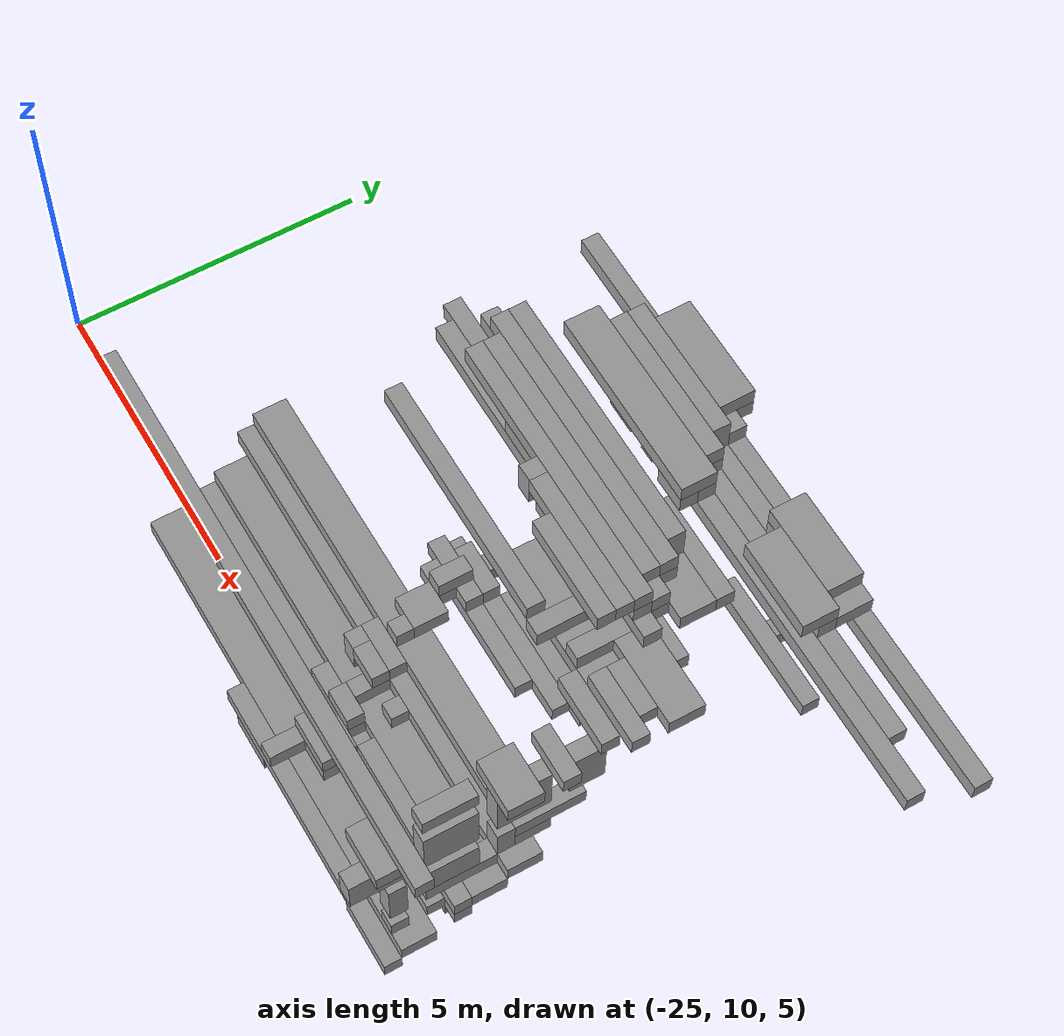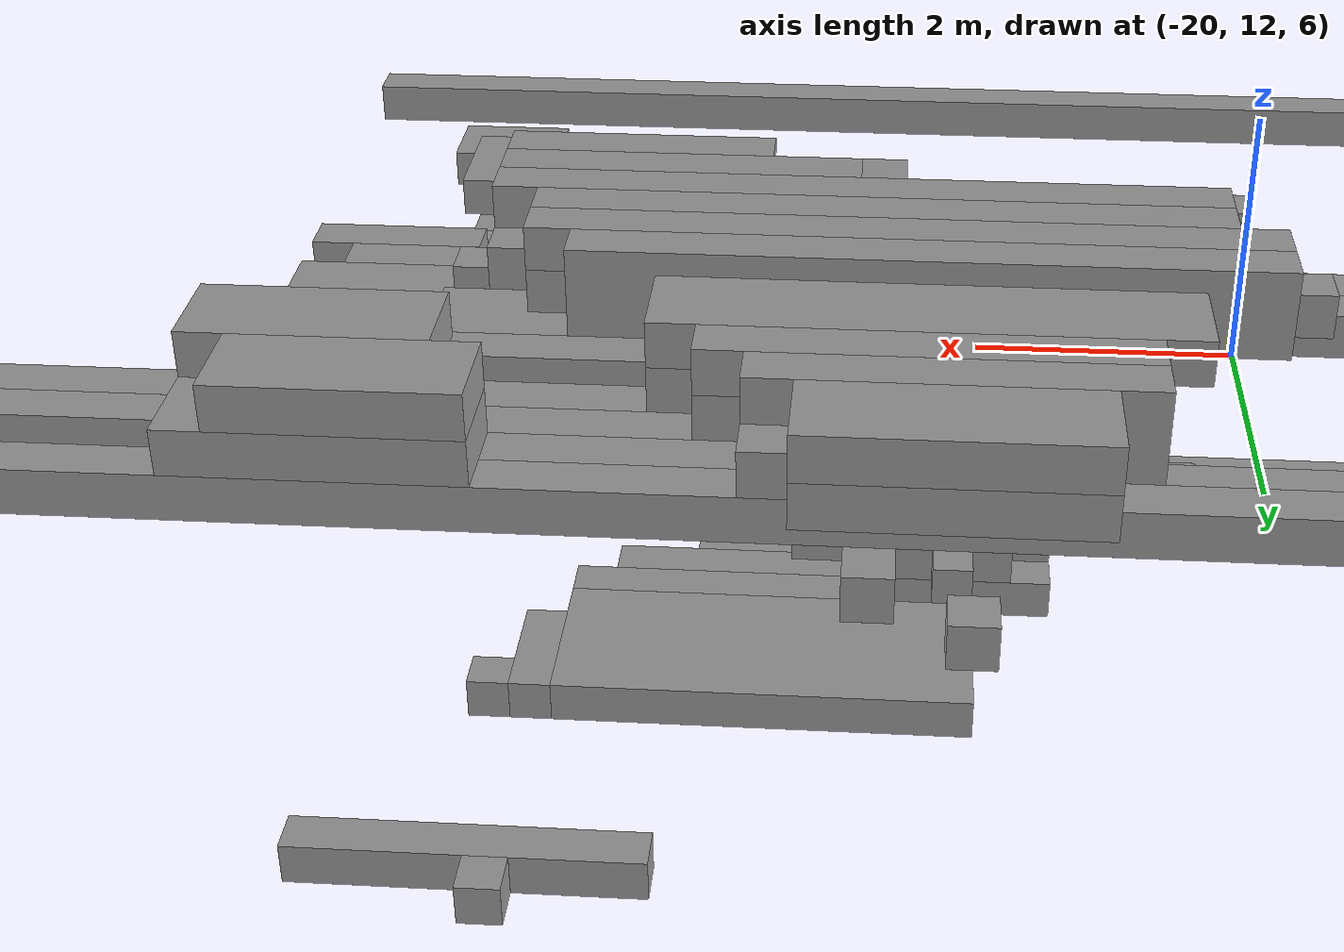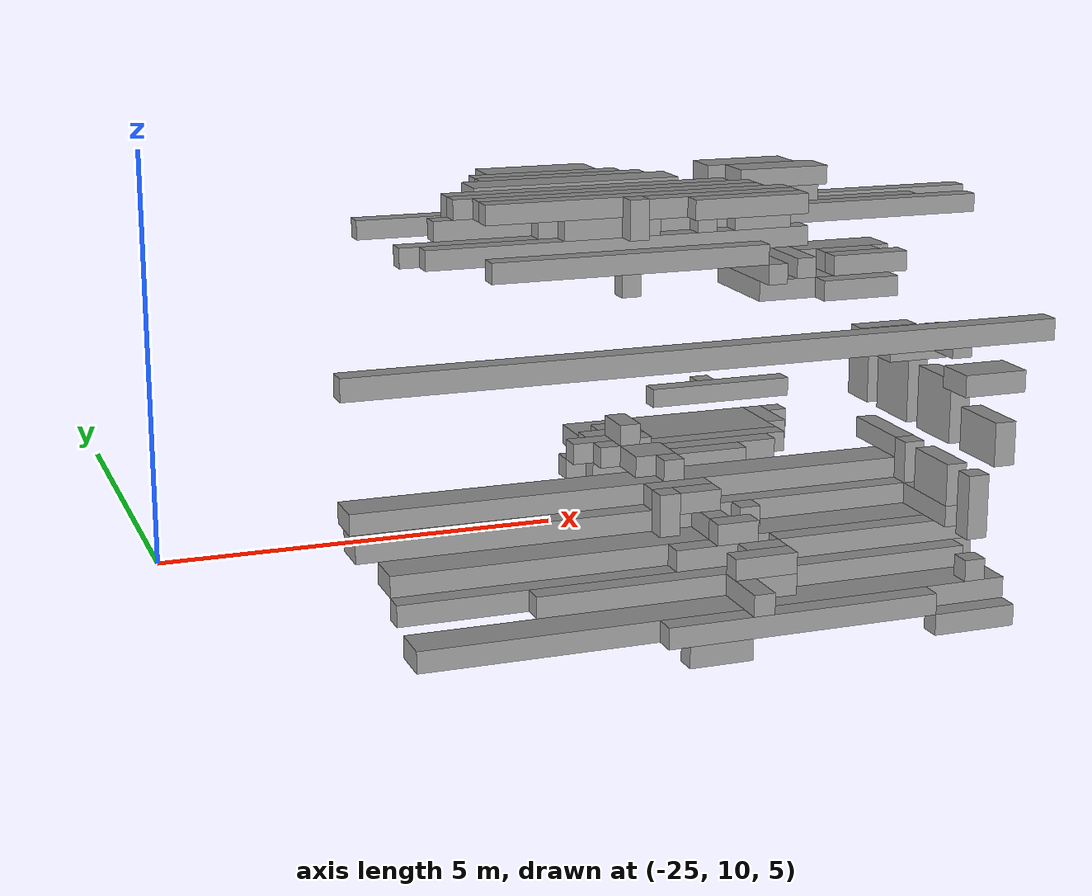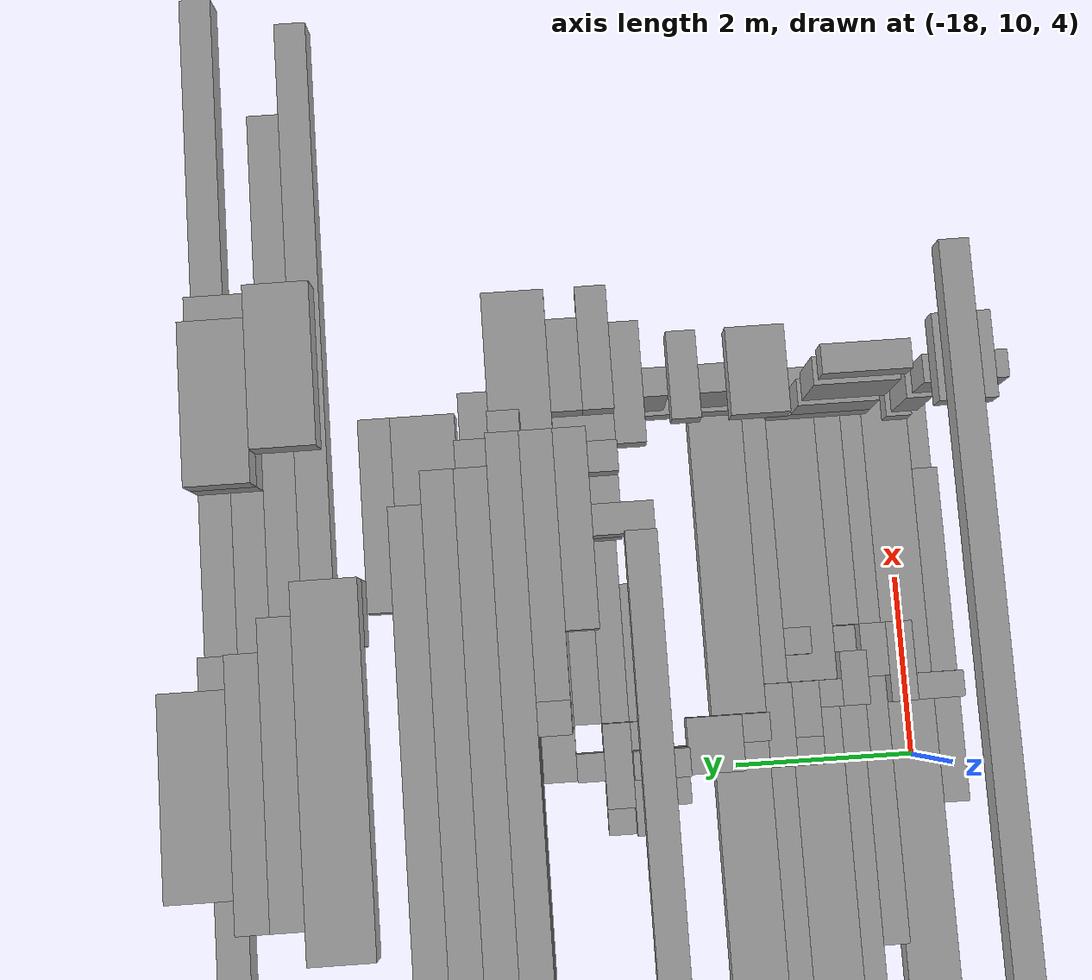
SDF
<sdf version="1.6">
 <world name="bt_world">
  <include><uri>model://sun</uri></include>
  <model name="obstacle_544">
   <static>true</static>
   <pose>-17.849999999999998 9.75 7.05 0 0 0</pose>
   <link name="link">
    <collision name="collision"><geometry><box><size>9.9 0.3 0.3</size></box></geometry></collision>
    <visual name="visual">
     <geometry><box><size>9.9 0.3 0.3</size></box></geometry>
     <material><ambient>0.5 0.5 0.5 1</ambient><diffuse>0.6 0.6 0.6 1</diffuse></material>
    </visual>
   </link>
  </model>
  <model name="obstacle_652">
   <static>true</static>
   <pose>-17.849999999999998 11.7 4.35 0 0 0</pose>
   <link name="link">
    <collision name="collision"><geometry><box><size>8.7 0.6 0.3</size></box></geometry></collision>
    <visual name="visual">
     <geometry><box><size>8.7 0.6 0.3</size></box></geometry>
     <material><ambient>0.5 0.5 0.5 1</ambient><diffuse>0.6 0.6 0.6 1</diffuse></material>
    </visual>
   </link>
  </model>
  <model name="obstacle_653">
   <static>true</static>
   <pose>-18.0 12.0 4.6499999999999995 0 0 0</pose>
   <link name="link">
    <collision name="collision"><geometry><box><size>8.4 0.6 0.3</size></box></geometry></collision>
    <visual name="visual">
     <geometry><box><size>8.4 0.6 0.3</size></box></geometry>
     <material><ambient>0.5 0.5 0.5 1</ambient><diffuse>0.6 0.6 0.6 1</diffuse></material>
    </visual>
   </link>
  </model>
  <model name="obstacle_699">
   <static>true</static>
   <pose>-17.7 9.9 3.4499999999999997 0 0 0</pose>
   <link name="link">
    <collision name="collision"><geometry><box><size>8.4 0.6 0.3</size></box></geometry></collision>
    <visual name="visual">
     <geometry><box><size>8.4 0.6 0.3</size></box></geometry>
     <material><ambient>0.5 0.5 0.5 1</ambient><diffuse>0.6 0.6 0.6 1</diffuse></material>
    </visual>
   </link>
  </model>
  <model name="obstacle_700">
   <static>true</static>
   <pose>-17.7 10.65 3.75 0 0 0</pose>
   <link name="link">
    <collision name="collision"><geometry><box><size>8.4 0.3 0.3</size></box></geometry></collision>
    <visual name="visual">
     <geometry><box><size>8.4 0.3 0.3</size></box></geometry>
     <material><ambient>0.5 0.5 0.5 1</ambient><diffuse>0.6 0.6 0.6 1</diffuse></material>
    </visual>
   </link>
  </model>
  <model name="obstacle_701">
   <static>true</static>
   <pose>-17.7 11.1 4.05 0 0 0</pose>
   <link name="link">
    <collision name="collision"><geometry><box><size>8.4 0.6 0.3</size></box></geometry></collision>
    <visual name="visual">
     <geometry><box><size>8.4 0.6 0.3</size></box></geometry>
     <material><ambient>0.5 0.5 0.5 1</ambient><diffuse>0.6 0.6 0.6 1</diffuse></material>
    </visual>
   </link>
  </model>
  <model name="obstacle_891">
   <static>true</static>
   <pose>-17.7 14.549999999999999 7.6499999999999995 0 0 0</pose>
   <link name="link">
    <collision name="collision"><geometry><box><size>6.0 0.3 0.3</size></box></geometry></collision>
    <visual name="visual">
     <geometry><box><size>6.0 0.3 0.3</size></box></geometry>
     <material><ambient>0.5 0.5 0.5 1</ambient><diffuse>0.6 0.6 0.6 1</diffuse></material>
    </visual>
   </link>
  </model>
  <model name="obstacle_894">
   <static>true</static>
   <pose>-15.45 16.95 7.6499999999999995 0 0 0</pose>
   <link name="link">
    <collision name="collision"><geometry><box><size>10.5 0.3 0.3</size></box></geometry></collision>
    <visual name="visual">
     <geometry><box><size>10.5 0.3 0.3</size></box></geometry>
     <material><ambient>0.5 0.5 0.5 1</ambient><diffuse>0.6 0.6 0.6 1</diffuse></material>
    </visual>
   </link>
  </model>
  <model name="obstacle_938">
   <static>true</static>
   <pose>-17.4 14.25 7.6499999999999995 0 0 0</pose>
   <link name="link">
    <collision name="collision"><geometry><box><size>6.0 0.3 0.3</size></box></geometry></collision>
    <visual name="visual">
     <geometry><box><size>6.0 0.3 0.3</size></box></geometry>
     <material><ambient>0.5 0.5 0.5 1</ambient><diffuse>0.6 0.6 0.6 1</diffuse></material>
    </visual>
   </link>
  </model>
  <model name="obstacle_965">
   <static>true</static>
   <pose>-16.95 10.35 3.75 0 0 0</pose>
   <link name="link">
    <collision name="collision"><geometry><box><size>6.3 0.3 0.3</size></box></geometry></collision>
    <visual name="visual">
     <geometry><box><size>6.3 0.3 0.3</size></box></geometry>
     <material><ambient>0.5 0.5 0.5 1</ambient><diffuse>0.6 0.6 0.6 1</diffuse></material>
    </visual>
   </link>
  </model>
  <model name="obstacle_966">
   <static>true</static>
   <pose>-17.849999999999998 10.95 3.75 0 0 0</pose>
   <link name="link">
    <collision name="collision"><geometry><box><size>4.5 0.3 0.3</size></box></geometry></collision>
    <visual name="visual">
     <geometry><box><size>4.5 0.3 0.3</size></box></geometry>
     <material><ambient>0.5 0.5 0.5 1</ambient><diffuse>0.6 0.6 0.6 1</diffuse></material>
    </visual>
   </link>
  </model>
  <model name="obstacle_967">
   <static>true</static>
   <pose>-17.55 14.85 7.949999999999999 0 0 0</pose>
   <link name="link">
    <collision name="collision"><geometry><box><size>5.1 0.3 0.3</size></box></geometry></collision>
    <visual name="visual">
     <geometry><box><size>5.1 0.3 0.3</size></box></geometry>
     <material><ambient>0.5 0.5 0.5 1</ambient><diffuse>0.6 0.6 0.6 1</diffuse></material>
    </visual>
   </link>
  </model>
  <model name="obstacle_985">
   <static>true</static>
   <pose>-17.7 13.049999999999999 7.6499999999999995 0 0 0</pose>
   <link name="link">
    <collision name="collision"><geometry><box><size>4.2 0.3 0.3</size></box></geometry></collision>
    <visual name="visual">
     <geometry><box><size>4.2 0.3 0.3</size></box></geometry>
     <material><ambient>0.5 0.5 0.5 1</ambient><diffuse>0.6 0.6 0.6 1</diffuse></material>
    </visual>
   </link>
  </model>
  <model name="obstacle_987">
   <static>true</static>
   <pose>-17.4 14.85 8.25 0 0 0</pose>
   <link name="link">
    <collision name="collision"><geometry><box><size>4.8 0.3 0.3</size></box></geometry></collision>
    <visual name="visual">
     <geometry><box><size>4.8 0.3 0.3</size></box></geometry>
     <material><ambient>0.5 0.5 0.5 1</ambient><diffuse>0.6 0.6 0.6 1</diffuse></material>
    </visual>
   </link>
  </model>
  <model name="obstacle_988">
   <static>true</static>
   <pose>-17.55 15.149999999999999 8.1 0 0 0</pose>
   <link name="link">
    <collision name="collision"><geometry><box><size>4.5 0.3 0.6</size></box></geometry></collision>
    <visual name="visual">
     <geometry><box><size>4.5 0.3 0.6</size></box></geometry>
     <material><ambient>0.5 0.5 0.5 1</ambient><diffuse>0.6 0.6 0.6 1</diffuse></material>
    </visual>
   </link>
  </model>
  <model name="obstacle_1003">
   <static>true</static>
   <pose>-17.099999999999998 14.25 8.25 0 0 0</pose>
   <link name="link">
    <collision name="collision"><geometry><box><size>4.8 0.3 0.3</size></box></geometry></collision>
    <visual name="visual">
     <geometry><box><size>4.8 0.3 0.3</size></box></geometry>
     <material><ambient>0.5 0.5 0.5 1</ambient><diffuse>0.6 0.6 0.6 1</diffuse></material>
    </visual>
   </link>
  </model>
  <model name="obstacle_1004">
   <static>true</static>
   <pose>-17.25 14.549999999999999 8.25 0 0 0</pose>
   <link name="link">
    <collision name="collision"><geometry><box><size>4.5 0.3 0.3</size></box></geometry></collision>
    <visual name="visual">
     <geometry><box><size>4.5 0.3 0.3</size></box></geometry>
     <material><ambient>0.5 0.5 0.5 1</ambient><diffuse>0.6 0.6 0.6 1</diffuse></material>
    </visual>
   </link>
  </model>
  <model name="obstacle_1021">
   <static>true</static>
   <pose>-17.55 15.899999999999999 8.25 0 0 0</pose>
   <link name="link">
    <collision name="collision"><geometry><box><size>3.3 0.6 0.3</size></box></geometry></collision>
    <visual name="visual">
     <geometry><box><size>3.3 0.6 0.3</size></box></geometry>
     <material><ambient>0.5 0.5 0.5 1</ambient><diffuse>0.6 0.6 0.6 1</diffuse></material>
    </visual>
   </link>
  </model>
  <model name="obstacle_1029">
   <static>true</static>
   <pose>-17.55 16.349999999999998 8.25 0 0 0</pose>
   <link name="link">
    <collision name="collision">
     <geometry><box><size>2.6999999999999997 0.3 0.3</size></box></geometry>
    </collision>
    <visual name="visual">
     <geometry><box><size>2.6999999999999997 0.3 0.3</size></box></geometry>
     <material><ambient>0.5 0.5 0.5 1</ambient><diffuse>0.6 0.6 0.6 1</diffuse></material>
    </visual>
   </link>
  </model>
  <model name="obstacle_1030">
   <static>true</static>
   <pose>-17.7 16.65 8.1 0 0 0</pose>
   <link name="link">
    <collision name="collision"><geometry><box><size>2.4 0.3 0.6</size></box></geometry></collision>
    <visual name="visual">
     <geometry><box><size>2.4 0.3 0.6</size></box></geometry>
     <material><ambient>0.5 0.5 0.5 1</ambient><diffuse>0.6 0.6 0.6 1</diffuse></material>
    </visual>
   </link>
  </model>
  <model name="obstacle_1039">
   <static>true</static>
   <pose>-16.65 9.45 3.4499999999999997 0 0 0</pose>
   <link name="link">
    <collision name="collision"><geometry><box><size>3.9 0.3 0.3</size></box></geometry></collision>
    <visual name="visual">
     <geometry><box><size>3.9 0.3 0.3</size></box></geometry>
     <material><ambient>0.5 0.5 0.5 1</ambient><diffuse>0.6 0.6 0.6 1</diffuse></material>
    </visual>
   </link>
  </model>
  <model name="obstacle_1041">
   <static>true</static>
   <pose>-18.0 13.049999999999999 4.95 0 0 0</pose>
   <link name="link">
    <collision name="collision"><geometry><box><size>1.2 0.3 0.3</size></box></geometry></collision>
    <visual name="visual">
     <geometry><box><size>1.2 0.3 0.3</size></box></geometry>
     <material><ambient>0.5 0.5 0.5 1</ambient><diffuse>0.6 0.6 0.6 1</diffuse></material>
    </visual>
   </link>
  </model>
  <model name="obstacle_1042">
   <static>true</static>
   <pose>-16.95 13.35 4.6499999999999995 0 0 0</pose>
   <link name="link">
    <collision name="collision"><geometry><box><size>3.3 0.3 0.3</size></box></geometry></collision>
    <visual name="visual">
     <geometry><box><size>3.3 0.3 0.3</size></box></geometry>
     <material><ambient>0.5 0.5 0.5 1</ambient><diffuse>0.6 0.6 0.6 1</diffuse></material>
    </visual>
   </link>
  </model>
  <model name="obstacle_1043">
   <static>true</static>
   <pose>-16.65 14.549999999999999 7.949999999999999 0 0 0</pose>
   <link name="link">
    <collision name="collision"><geometry><box><size>3.9 0.3 0.3</size></box></geometry></collision>
    <visual name="visual">
     <geometry><box><size>3.9 0.3 0.3</size></box></geometry>
     <material><ambient>0.5 0.5 0.5 1</ambient><diffuse>0.6 0.6 0.6 1</diffuse></material>
    </visual>
   </link>
  </model>
  <model name="obstacle_1046">
   <static>true</static>
   <pose>-17.55 16.95 7.949999999999999 0 0 0</pose>
   <link name="link">
    <collision name="collision"><geometry><box><size>2.1 0.3 0.3</size></box></geometry></collision>
    <visual name="visual">
     <geometry><box><size>2.1 0.3 0.3</size></box></geometry>
     <material><ambient>0.5 0.5 0.5 1</ambient><diffuse>0.6 0.6 0.6 1</diffuse></material>
    </visual>
   </link>
  </model>
  <model name="obstacle_1047">
   <static>true</static>
   <pose>-17.7 17.099999999999998 8.25 0 0 0</pose>
   <link name="link">
    <collision name="collision">
     <geometry><box><size>1.7999999999999998 0.6 0.3</size></box></geometry>
    </collision>
    <visual name="visual">
     <geometry><box><size>1.7999999999999998 0.6 0.3</size></box></geometry>
     <material><ambient>0.5 0.5 0.5 1</ambient><diffuse>0.6 0.6 0.6 1</diffuse></material>
    </visual>
   </link>
  </model>
  <model name="obstacle_1048">
   <static>true</static>
   <pose>-17.7 17.25 7.949999999999999 0 0 0</pose>
   <link name="link">
    <collision name="collision">
     <geometry><box><size>1.7999999999999998 0.3 0.3</size></box></geometry>
    </collision>
    <visual name="visual">
     <geometry><box><size>1.7999999999999998 0.3 0.3</size></box></geometry>
     <material><ambient>0.5 0.5 0.5 1</ambient><diffuse>0.6 0.6 0.6 1</diffuse></material>
    </visual>
   </link>
  </model>
  <model name="obstacle_1061">
   <static>true</static>
   <pose>-17.849999999999998 9.45 3.15 0 0 0</pose>
   <link name="link">
    <collision name="collision">
     <geometry><box><size>0.8999999999999999 0.3 0.3</size></box></geometry>
    </collision>
    <visual name="visual">
     <geometry><box><size>0.8999999999999999 0.3 0.3</size></box></geometry>
     <material><ambient>0.5 0.5 0.5 1</ambient><diffuse>0.6 0.6 0.6 1</diffuse></material>
    </visual>
   </link>
  </model>
  <model name="obstacle_1062">
   <static>true</static>
   <pose>-18.0 12.75 4.95 0 0 0</pose>
   <link name="link">
    <collision name="collision"><geometry><box><size>0.6 0.3 0.3</size></box></geometry></collision>
    <visual name="visual">
     <geometry><box><size>0.6 0.3 0.3</size></box></geometry>
     <material><ambient>0.5 0.5 0.5 1</ambient><diffuse>0.6 0.6 0.6 1</diffuse></material>
    </visual>
   </link>
  </model>
  <model name="obstacle_1063">
   <static>true</static>
   <pose>-17.099999999999998 13.049999999999999 4.6499999999999995 0 0 0</pose>
   <link name="link">
    <collision name="collision"><geometry><box><size>2.4 0.3 0.3</size></box></geometry></collision>
    <visual name="visual">
     <geometry><box><size>2.4 0.3 0.3</size></box></geometry>
     <material><ambient>0.5 0.5 0.5 1</ambient><diffuse>0.6 0.6 0.6 1</diffuse></material>
    </visual>
   </link>
  </model>
  <model name="obstacle_1064">
   <static>true</static>
   <pose>-17.849999999999998 13.35 4.95 0 0 0</pose>
   <link name="link">
    <collision name="collision">
     <geometry><box><size>0.8999999999999999 0.3 0.3</size></box></geometry>
    </collision>
    <visual name="visual">
     <geometry><box><size>0.8999999999999999 0.3 0.3</size></box></geometry>
     <material><ambient>0.5 0.5 0.5 1</ambient><diffuse>0.6 0.6 0.6 1</diffuse></material>
    </visual>
   </link>
  </model>
  <model name="obstacle_1065">
   <static>true</static>
   <pose>-17.55 14.25 7.949999999999999 0 0 0</pose>
   <link name="link">
    <collision name="collision"><geometry><box><size>1.5 0.3 0.3</size></box></geometry></collision>
    <visual name="visual">
     <geometry><box><size>1.5 0.3 0.3</size></box></geometry>
     <material><ambient>0.5 0.5 0.5 1</ambient><diffuse>0.6 0.6 0.6 1</diffuse></material>
    </visual>
   </link>
  </model>
  <model name="obstacle_1066">
   <static>true</static>
   <pose>-18.0 16.05 7.35 0 0 0</pose>
   <link name="link">
    <collision name="collision"><geometry><box><size>0.6 0.3 0.3</size></box></geometry></collision>
    <visual name="visual">
     <geometry><box><size>0.6 0.3 0.3</size></box></geometry>
     <material><ambient>0.5 0.5 0.5 1</ambient><diffuse>0.6 0.6 0.6 1</diffuse></material>
    </visual>
   </link>
  </model>
  <model name="obstacle_1077">
   <static>true</static>
   <pose>-17.849999999999998 10.65 3.4499999999999997 0 0 0</pose>
   <link name="link">
    <collision name="collision"><geometry><box><size>0.3 0.3 0.3</size></box></geometry></collision>
    <visual name="visual">
     <geometry><box><size>0.3 0.3 0.3</size></box></geometry>
     <material><ambient>0.5 0.5 0.5 1</ambient><diffuse>0.6 0.6 0.6 1</diffuse></material>
    </visual>
   </link>
  </model>
  <model name="obstacle_1078">
   <static>true</static>
   <pose>-17.4 10.65 4.05 0 0 0</pose>
   <link name="link">
    <collision name="collision"><geometry><box><size>1.2 0.3 0.3</size></box></geometry></collision>
    <visual name="visual">
     <geometry><box><size>1.2 0.3 0.3</size></box></geometry>
     <material><ambient>0.5 0.5 0.5 1</ambient><diffuse>0.6 0.6 0.6 1</diffuse></material>
    </visual>
   </link>
  </model>
  <model name="obstacle_1079">
   <static>true</static>
   <pose>-17.849999999999998 11.25 4.5 0 0 0</pose>
   <link name="link">
    <collision name="collision"><geometry><box><size>0.3 0.3 0.6</size></box></geometry></collision>
    <visual name="visual">
     <geometry><box><size>0.3 0.3 0.6</size></box></geometry>
     <material><ambient>0.5 0.5 0.5 1</ambient><diffuse>0.6 0.6 0.6 1</diffuse></material>
    </visual>
   </link>
  </model>
  <model name="obstacle_1080">
   <static>true</static>
   <pose>-17.55 11.549999999999999 4.6499999999999995 0 0 0</pose>
   <link name="link">
    <collision name="collision">
     <geometry><box><size>0.8999999999999999 0.3 0.3</size></box></geometry>
    </collision>
    <visual name="visual">
     <geometry><box><size>0.8999999999999999 0.3 0.3</size></box></geometry>
     <material><ambient>0.5 0.5 0.5 1</ambient><diffuse>0.6 0.6 0.6 1</diffuse></material>
    </visual>
   </link>
  </model>
  <model name="obstacle_1081">
   <static>true</static>
   <pose>-17.7 12.299999999999999 4.95 0 0 0</pose>
   <link name="link">
    <collision name="collision"><geometry><box><size>0.6 0.6 0.3</size></box></geometry></collision>
    <visual name="visual">
     <geometry><box><size>0.6 0.6 0.3</size></box></geometry>
     <material><ambient>0.5 0.5 0.5 1</ambient><diffuse>0.6 0.6 0.6 1</diffuse></material>
    </visual>
   </link>
  </model>
  <model name="obstacle_1082">
   <static>true</static>
   <pose>-17.849999999999998 12.9 5.25 0 0 0</pose>
   <link name="link">
    <collision name="collision"><geometry><box><size>0.3 0.6 0.3</size></box></geometry></collision>
    <visual name="visual">
     <geometry><box><size>0.3 0.6 0.3</size></box></geometry>
     <material><ambient>0.5 0.5 0.5 1</ambient><diffuse>0.6 0.6 0.6 1</diffuse></material>
    </visual>
   </link>
  </model>
  <model name="obstacle_1083">
   <static>true</static>
   <pose>-17.849999999999998 13.65 4.95 0 0 0</pose>
   <link name="link">
    <collision name="collision"><geometry><box><size>0.3 0.3 0.3</size></box></geometry></collision>
    <visual name="visual">
     <geometry><box><size>0.3 0.3 0.3</size></box></geometry>
     <material><ambient>0.5 0.5 0.5 1</ambient><diffuse>0.6 0.6 0.6 1</diffuse></material>
    </visual>
   </link>
  </model>
  <model name="obstacle_1084">
   <static>true</static>
   <pose>-16.5 14.399999999999999 4.6499999999999995 0 0 0</pose>
   <link name="link">
    <collision name="collision"><geometry><box><size>3.0 1.2 0.3</size></box></geometry></collision>
    <visual name="visual">
     <geometry><box><size>3.0 1.2 0.3</size></box></geometry>
     <material><ambient>0.5 0.5 0.5 1</ambient><diffuse>0.6 0.6 0.6 1</diffuse></material>
    </visual>
   </link>
  </model>
  <model name="obstacle_1085">
   <static>true</static>
   <pose>-14.25 16.05 7.6499999999999995 0 0 0</pose>
   <link name="link">
    <collision name="collision"><geometry><box><size>7.5 0.3 0.3</size></box></geometry></collision>
    <visual name="visual">
     <geometry><box><size>7.5 0.3 0.3</size></box></geometry>
     <material><ambient>0.5 0.5 0.5 1</ambient><diffuse>0.6 0.6 0.6 1</diffuse></material>
    </visual>
   </link>
  </model>
  <model name="obstacle_1086">
   <static>true</static>
   <pose>-17.849999999999998 17.25 7.05 0 0 0</pose>
   <link name="link">
    <collision name="collision"><geometry><box><size>0.3 0.3 0.3</size></box></geometry></collision>
    <visual name="visual">
     <geometry><box><size>0.3 0.3 0.3</size></box></geometry>
     <material><ambient>0.5 0.5 0.5 1</ambient><diffuse>0.6 0.6 0.6 1</diffuse></material>
    </visual>
   </link>
  </model>
  <model name="obstacle_1100">
   <static>true</static>
   <pose>-17.4 11.25 4.6499999999999995 0 0 0</pose>
   <link name="link">
    <collision name="collision"><geometry><box><size>0.6 0.3 0.3</size></box></geometry></collision>
    <visual name="visual">
     <geometry><box><size>0.6 0.3 0.3</size></box></geometry>
     <material><ambient>0.5 0.5 0.5 1</ambient><diffuse>0.6 0.6 0.6 1</diffuse></material>
    </visual>
   </link>
  </model>
  <model name="obstacle_1101">
   <static>true</static>
   <pose>-17.55 11.85 4.95 0 0 0</pose>
   <link name="link">
    <collision name="collision"><geometry><box><size>0.3 0.3 0.3</size></box></geometry></collision>
    <visual name="visual">
     <geometry><box><size>0.3 0.3 0.3</size></box></geometry>
     <material><ambient>0.5 0.5 0.5 1</ambient><diffuse>0.6 0.6 0.6 1</diffuse></material>
    </visual>
   </link>
  </model>
  <model name="obstacle_1123">
   <static>true</static>
   <pose>-17.25 9.75 3.75 0 0 0</pose>
   <link name="link">
    <collision name="collision">
     <geometry><box><size>0.3 0.8999999999999999 0.3</size></box></geometry>
    </collision>
    <visual name="visual">
     <geometry><box><size>0.3 0.8999999999999999 0.3</size></box></geometry>
     <material><ambient>0.5 0.5 0.5 1</ambient><diffuse>0.6 0.6 0.6 1</diffuse></material>
    </visual>
   </link>
  </model>
  <model name="obstacle_1124">
   <static>true</static>
   <pose>-16.95 10.049999999999999 4.05 0 0 0</pose>
   <link name="link">
    <collision name="collision">
     <geometry><box><size>0.8999999999999999 0.3 0.3</size></box></geometry>
    </collision>
    <visual name="visual">
     <geometry><box><size>0.8999999999999999 0.3 0.3</size></box></geometry>
     <material><ambient>0.5 0.5 0.5 1</ambient><diffuse>0.6 0.6 0.6 1</diffuse></material>
    </visual>
   </link>
  </model>
  <model name="obstacle_1125">
   <static>true</static>
   <pose>-17.099999999999998 10.65 4.35 0 0 0</pose>
   <link name="link">
    <collision name="collision"><geometry><box><size>0.6 0.3 0.3</size></box></geometry></collision>
    <visual name="visual">
     <geometry><box><size>0.6 0.3 0.3</size></box></geometry>
     <material><ambient>0.5 0.5 0.5 1</ambient><diffuse>0.6 0.6 0.6 1</diffuse></material>
    </visual>
   </link>
  </model>
  <model name="obstacle_1126">
   <static>true</static>
   <pose>-17.25 11.1 4.35 0 0 0</pose>
   <link name="link">
    <collision name="collision"><geometry><box><size>0.3 0.6 0.3</size></box></geometry></collision>
    <visual name="visual">
     <geometry><box><size>0.3 0.6 0.3</size></box></geometry>
     <material><ambient>0.5 0.5 0.5 1</ambient><diffuse>0.6 0.6 0.6 1</diffuse></material>
    </visual>
   </link>
  </model>
  <model name="obstacle_1127">
   <static>true</static>
   <pose>-15.6 11.549999999999999 4.05 0 0 0</pose>
   <link name="link">
    <collision name="collision">
     <geometry><box><size>3.5999999999999996 0.3 0.3</size></box></geometry>
    </collision>
    <visual name="visual">
     <geometry><box><size>3.5999999999999996 0.3 0.3</size></box></geometry>
     <material><ambient>0.5 0.5 0.5 1</ambient><diffuse>0.6 0.6 0.6 1</diffuse></material>
    </visual>
   </link>
  </model>
  <model name="obstacle_1128">
   <static>true</static>
   <pose>-16.2 13.65 4.6499999999999995 0 0 0</pose>
   <link name="link">
    <collision name="collision"><geometry><box><size>2.4 0.3 0.3</size></box></geometry></collision>
    <visual name="visual">
     <geometry><box><size>2.4 0.3 0.3</size></box></geometry>
     <material><ambient>0.5 0.5 0.5 1</ambient><diffuse>0.6 0.6 0.6 1</diffuse></material>
    </visual>
   </link>
  </model>
  <model name="obstacle_1129">
   <static>true</static>
   <pose>-17.25 13.95 8.1 0 0 0</pose>
   <link name="link">
    <collision name="collision"><geometry><box><size>0.3 0.3 0.6</size></box></geometry></collision>
    <visual name="visual">
     <geometry><box><size>0.3 0.3 0.6</size></box></geometry>
     <material><ambient>0.5 0.5 0.5 1</ambient><diffuse>0.6 0.6 0.6 1</diffuse></material>
    </visual>
   </link>
  </model>
  <model name="obstacle_1130">
   <static>true</static>
   <pose>-17.25 14.25 7.199999999999999 0 0 0</pose>
   <link name="link">
    <collision name="collision"><geometry><box><size>0.3 0.3 0.6</size></box></geometry></collision>
    <visual name="visual">
     <geometry><box><size>0.3 0.3 0.6</size></box></geometry>
     <material><ambient>0.5 0.5 0.5 1</ambient><diffuse>0.6 0.6 0.6 1</diffuse></material>
    </visual>
   </link>
  </model>
  <model name="obstacle_1131">
   <static>true</static>
   <pose>-17.25 16.05 7.35 0 0 0</pose>
   <link name="link">
    <collision name="collision"><geometry><box><size>0.3 0.3 0.3</size></box></geometry></collision>
    <visual name="visual">
     <geometry><box><size>0.3 0.3 0.3</size></box></geometry>
     <material><ambient>0.5 0.5 0.5 1</ambient><diffuse>0.6 0.6 0.6 1</diffuse></material>
    </visual>
   </link>
  </model>
  <model name="obstacle_1132">
   <static>true</static>
   <pose>-14.399999999999999 16.349999999999998 7.6499999999999995 0 0 0</pose>
   <link name="link">
    <collision name="collision"><geometry><box><size>6.0 0.3 0.3</size></box></geometry></collision>
    <visual name="visual">
     <geometry><box><size>6.0 0.3 0.3</size></box></geometry>
     <material><ambient>0.5 0.5 0.5 1</ambient><diffuse>0.6 0.6 0.6 1</diffuse></material>
    </visual>
   </link>
  </model>
  <model name="obstacle_1133">
   <static>true</static>
   <pose>-15.75 16.65 7.6499999999999995 0 0 0</pose>
   <link name="link">
    <collision name="collision"><geometry><box><size>3.3 0.3 0.3</size></box></geometry></collision>
    <visual name="visual">
     <geometry><box><size>3.3 0.3 0.3</size></box></geometry>
     <material><ambient>0.5 0.5 0.5 1</ambient><diffuse>0.6 0.6 0.6 1</diffuse></material>
    </visual>
   </link>
  </model>
  <model name="obstacle_1134">
   <static>true</static>
   <pose>-17.25 17.25 7.35 0 0 0</pose>
   <link name="link">
    <collision name="collision"><geometry><box><size>0.3 0.3 0.3</size></box></geometry></collision>
    <visual name="visual">
     <geometry><box><size>0.3 0.3 0.3</size></box></geometry>
     <material><ambient>0.5 0.5 0.5 1</ambient><diffuse>0.6 0.6 0.6 1</diffuse></material>
    </visual>
   </link>
  </model>
  <model name="obstacle_1173">
   <static>true</static>
   <pose>-16.8 10.049999999999999 3.75 0 0 0</pose>
   <link name="link">
    <collision name="collision"><geometry><box><size>0.6 0.3 0.3</size></box></geometry></collision>
    <visual name="visual">
     <geometry><box><size>0.6 0.3 0.3</size></box></geometry>
     <material><ambient>0.5 0.5 0.5 1</ambient><diffuse>0.6 0.6 0.6 1</diffuse></material>
    </visual>
   </link>
  </model>
  <model name="obstacle_1174">
   <static>true</static>
   <pose>-16.8 10.35 4.05 0 0 0</pose>
   <link name="link">
    <collision name="collision"><geometry><box><size>0.6 0.3 0.3</size></box></geometry></collision>
    <visual name="visual">
     <geometry><box><size>0.6 0.3 0.3</size></box></geometry>
     <material><ambient>0.5 0.5 0.5 1</ambient><diffuse>0.6 0.6 0.6 1</diffuse></material>
    </visual>
   </link>
  </model>
  <model name="obstacle_1175">
   <static>true</static>
   <pose>-15.899999999999999 13.95 8.25 0 0 0</pose>
   <link name="link">
    <collision name="collision"><geometry><box><size>2.4 0.3 0.3</size></box></geometry></collision>
    <visual name="visual">
     <geometry><box><size>2.4 0.3 0.3</size></box></geometry>
     <material><ambient>0.5 0.5 0.5 1</ambient><diffuse>0.6 0.6 0.6 1</diffuse></material>
    </visual>
   </link>
  </model>
  <model name="obstacle_1176">
   <static>true</static>
   <pose>-16.95 16.5 7.35 0 0 0</pose>
   <link name="link">
    <collision name="collision"><geometry><box><size>0.3 0.6 0.3</size></box></geometry></collision>
    <visual name="visual">
     <geometry><box><size>0.3 0.6 0.3</size></box></geometry>
     <material><ambient>0.5 0.5 0.5 1</ambient><diffuse>0.6 0.6 0.6 1</diffuse></material>
    </visual>
   </link>
  </model>
  <model name="obstacle_1177">
   <static>true</static>
   <pose>-16.65 16.349999999999998 7.949999999999999 0 0 0</pose>
   <link name="link">
    <collision name="collision">
     <geometry><box><size>0.8999999999999999 0.3 0.3</size></box></geometry>
    </collision>
    <visual name="visual">
     <geometry><box><size>0.8999999999999999 0.3 0.3</size></box></geometry>
     <material><ambient>0.5 0.5 0.5 1</ambient><diffuse>0.6 0.6 0.6 1</diffuse></material>
    </visual>
   </link>
  </model>
  <model name="obstacle_1199">
   <static>true</static>
   <pose>-16.65 11.25 4.35 0 0 0</pose>
   <link name="link">
    <collision name="collision"><geometry><box><size>0.3 0.3 0.3</size></box></geometry></collision>
    <visual name="visual">
     <geometry><box><size>0.3 0.3 0.3</size></box></geometry>
     <material><ambient>0.5 0.5 0.5 1</ambient><diffuse>0.6 0.6 0.6 1</diffuse></material>
    </visual>
   </link>
  </model>
  <model name="obstacle_1200">
   <static>true</static>
   <pose>-16.349999999999998 16.05 7.949999999999999 0 0 0</pose>
   <link name="link">
    <collision name="collision">
     <geometry><box><size>0.8999999999999999 0.3 0.3</size></box></geometry>
    </collision>
    <visual name="visual">
     <geometry><box><size>0.8999999999999999 0.3 0.3</size></box></geometry>
     <material><ambient>0.5 0.5 0.5 1</ambient><diffuse>0.6 0.6 0.6 1</diffuse></material>
    </visual>
   </link>
  </model>
  <model name="obstacle_1214">
   <static>true</static>
   <pose>-15.0 10.65 4.05 0 0 0</pose>
   <link name="link">
    <collision name="collision"><geometry><box><size>3.0 0.3 0.3</size></box></geometry></collision>
    <visual name="visual">
     <geometry><box><size>3.0 0.3 0.3</size></box></geometry>
     <material><ambient>0.5 0.5 0.5 1</ambient><diffuse>0.6 0.6 0.6 1</diffuse></material>
    </visual>
   </link>
  </model>
  <model name="obstacle_1215">
   <static>true</static>
   <pose>-15.6 13.65 8.25 0 0 0</pose>
   <link name="link">
    <collision name="collision">
     <geometry><box><size>1.7999999999999998 0.3 0.3</size></box></geometry>
    </collision>
    <visual name="visual">
     <geometry><box><size>1.7999999999999998 0.3 0.3</size></box></geometry>
     <material><ambient>0.5 0.5 0.5 1</ambient><diffuse>0.6 0.6 0.6 1</diffuse></material>
    </visual>
   </link>
  </model>
  <model name="obstacle_1216">
   <static>true</static>
   <pose>-16.2 15.75 7.949999999999999 0 0 0</pose>
   <link name="link">
    <collision name="collision"><geometry><box><size>0.6 0.3 0.3</size></box></geometry></collision>
    <visual name="visual">
     <geometry><box><size>0.6 0.3 0.3</size></box></geometry>
     <material><ambient>0.5 0.5 0.5 1</ambient><diffuse>0.6 0.6 0.6 1</diffuse></material>
    </visual>
   </link>
  </model>
  <model name="obstacle_1226">
   <static>true</static>
   <pose>-16.05 14.25 7.949999999999999 0 0 0</pose>
   <link name="link">
    <collision name="collision"><geometry><box><size>0.3 0.3 0.3</size></box></geometry></collision>
    <visual name="visual">
     <geometry><box><size>0.3 0.3 0.3</size></box></geometry>
     <material><ambient>0.5 0.5 0.5 1</ambient><diffuse>0.6 0.6 0.6 1</diffuse></material>
    </visual>
   </link>
  </model>
  <model name="obstacle_1227">
   <static>true</static>
   <pose>-15.299999999999999 15.45 7.6499999999999995 0 0 0</pose>
   <link name="link">
    <collision name="collision">
     <geometry><box><size>1.7999999999999998 0.3 0.3</size></box></geometry>
    </collision>
    <visual name="visual">
     <geometry><box><size>1.7999999999999998 0.3 0.3</size></box></geometry>
     <material><ambient>0.5 0.5 0.5 1</ambient><diffuse>0.6 0.6 0.6 1</diffuse></material>
    </visual>
   </link>
  </model>
  <model name="obstacle_1244">
   <static>true</static>
   <pose>-15.149999999999999 15.0 7.6499999999999995 0 0 0</pose>
   <link name="link">
    <collision name="collision"><geometry><box><size>1.5 0.6 0.3</size></box></geometry></collision>
    <visual name="visual">
     <geometry><box><size>1.5 0.6 0.3</size></box></geometry>
     <material><ambient>0.5 0.5 0.5 1</ambient><diffuse>0.6 0.6 0.6 1</diffuse></material>
    </visual>
   </link>
  </model>
  <model name="obstacle_1245">
   <static>true</static>
   <pose>-14.7 16.65 4.6499999999999995 0 0 0</pose>
   <link name="link">
    <collision name="collision"><geometry><box><size>2.4 0.3 0.3</size></box></geometry></collision>
    <visual name="visual">
     <geometry><box><size>2.4 0.3 0.3</size></box></geometry>
     <material><ambient>0.5 0.5 0.5 1</ambient><diffuse>0.6 0.6 0.6 1</diffuse></material>
    </visual>
   </link>
  </model>
  <model name="obstacle_1254">
   <static>true</static>
   <pose>-15.45 13.799999999999999 7.35 0 0 0</pose>
   <link name="link">
    <collision name="collision">
     <geometry><box><size>0.3 1.7999999999999998 0.3</size></box></geometry>
    </collision>
    <visual name="visual">
     <geometry><box><size>0.3 1.7999999999999998 0.3</size></box></geometry>
     <material><ambient>0.5 0.5 0.5 1</ambient><diffuse>0.6 0.6 0.6 1</diffuse></material>
    </visual>
   </link>
  </model>
  <model name="obstacle_1255">
   <static>true</static>
   <pose>-14.85 13.95 7.05 0 0 0</pose>
   <link name="link">
    <collision name="collision"><geometry><box><size>1.5 1.5 0.3</size></box></geometry></collision>
    <visual name="visual">
     <geometry><box><size>1.5 1.5 0.3</size></box></geometry>
     <material><ambient>0.5 0.5 0.5 1</ambient><diffuse>0.6 0.6 0.6 1</diffuse></material>
    </visual>
   </link>
  </model>
  <model name="obstacle_1256">
   <static>true</static>
   <pose>-15.149999999999999 14.25 7.949999999999999 0 0 0</pose>
   <link name="link">
    <collision name="collision">
     <geometry><box><size>0.8999999999999999 0.3 0.3</size></box></geometry>
    </collision>
    <visual name="visual">
     <geometry><box><size>0.8999999999999999 0.3 0.3</size></box></geometry>
     <material><ambient>0.5 0.5 0.5 1</ambient><diffuse>0.6 0.6 0.6 1</diffuse></material>
    </visual>
   </link>
  </model>
  <model name="obstacle_1269">
   <static>true</static>
   <pose>-14.549999999999999 10.95 3.75 0 0 0</pose>
   <link name="link">
    <collision name="collision"><geometry><box><size>1.5 0.3 0.3</size></box></geometry></collision>
    <visual name="visual">
     <geometry><box><size>1.5 0.3 0.3</size></box></geometry>
     <material><ambient>0.5 0.5 0.5 1</ambient><diffuse>0.6 0.6 0.6 1</diffuse></material>
    </visual>
   </link>
  </model>
  <model name="obstacle_1276">
   <static>true</static>
   <pose>-14.85 13.799999999999999 7.35 0 0 0</pose>
   <link name="link">
    <collision name="collision"><geometry><box><size>0.3 1.2 0.3</size></box></geometry></collision>
    <visual name="visual">
     <geometry><box><size>0.3 1.2 0.3</size></box></geometry>
     <material><ambient>0.5 0.5 0.5 1</ambient><diffuse>0.6 0.6 0.6 1</diffuse></material>
    </visual>
   </link>
  </model>
  <model name="obstacle_1277">
   <static>true</static>
   <pose>-14.85 14.549999999999999 4.6499999999999995 0 0 0</pose>
   <link name="link">
    <collision name="collision">
     <geometry><box><size>0.3 0.8999999999999999 0.3</size></box></geometry>
    </collision>
    <visual name="visual">
     <geometry><box><size>0.3 0.8999999999999999 0.3</size></box></geometry>
     <material><ambient>0.5 0.5 0.5 1</ambient><diffuse>0.6 0.6 0.6 1</diffuse></material>
    </visual>
   </link>
  </model>
  <model name="obstacle_1278">
   <static>true</static>
   <pose>-14.1 16.8 7.949999999999999 0 0 0</pose>
   <link name="link">
    <collision name="collision">
     <geometry><box><size>1.7999999999999998 0.6 0.3</size></box></geometry>
    </collision>
    <visual name="visual">
     <geometry><box><size>1.7999999999999998 0.6 0.3</size></box></geometry>
     <material><ambient>0.5 0.5 0.5 1</ambient><diffuse>0.6 0.6 0.6 1</diffuse></material>
    </visual>
   </link>
  </model>
  <model name="obstacle_1279">
   <static>true</static>
   <pose>-14.25 16.8 8.25 0 0 0</pose>
   <link name="link">
    <collision name="collision"><geometry><box><size>1.5 0.6 0.3</size></box></geometry></collision>
    <visual name="visual">
     <geometry><box><size>1.5 0.6 0.3</size></box></geometry>
     <material><ambient>0.5 0.5 0.5 1</ambient><diffuse>0.6 0.6 0.6 1</diffuse></material>
    </visual>
   </link>
  </model>
  <model name="obstacle_1280">
   <static>true</static>
   <pose>-14.85 16.95 4.6499999999999995 0 0 0</pose>
   <link name="link">
    <collision name="collision"><geometry><box><size>0.3 0.3 0.3</size></box></geometry></collision>
    <visual name="visual">
     <geometry><box><size>0.3 0.3 0.3</size></box></geometry>
     <material><ambient>0.5 0.5 0.5 1</ambient><diffuse>0.6 0.6 0.6 1</diffuse></material>
    </visual>
   </link>
  </model>
  <model name="obstacle_1289">
   <static>true</static>
   <pose>-14.1 9.45 3.15 0 0 0</pose>
   <link name="link">
    <collision name="collision"><geometry><box><size>1.2 0.3 0.3</size></box></geometry></collision>
    <visual name="visual">
     <geometry><box><size>1.2 0.3 0.3</size></box></geometry>
     <material><ambient>0.5 0.5 0.5 1</ambient><diffuse>0.6 0.6 0.6 1</diffuse></material>
    </visual>
   </link>
  </model>
  <model name="obstacle_1290">
   <static>true</static>
   <pose>-14.1 13.049999999999999 7.05 0 0 0</pose>
   <link name="link">
    <collision name="collision"><geometry><box><size>1.2 0.3 0.3</size></box></geometry></collision>
    <visual name="visual">
     <geometry><box><size>1.2 0.3 0.3</size></box></geometry>
     <material><ambient>0.5 0.5 0.5 1</ambient><diffuse>0.6 0.6 0.6 1</diffuse></material>
    </visual>
   </link>
  </model>
  <model name="obstacle_1291">
   <static>true</static>
   <pose>-13.95 14.1 7.35 0 0 0</pose>
   <link name="link">
    <collision name="collision"><geometry><box><size>1.5 0.6 0.3</size></box></geometry></collision>
    <visual name="visual">
     <geometry><box><size>1.5 0.6 0.3</size></box></geometry>
     <material><ambient>0.5 0.5 0.5 1</ambient><diffuse>0.6 0.6 0.6 1</diffuse></material>
    </visual>
   </link>
  </model>
  <model name="obstacle_1292">
   <static>true</static>
   <pose>-14.549999999999999 14.85 4.6499999999999995 0 0 0</pose>
   <link name="link">
    <collision name="collision"><geometry><box><size>0.3 0.3 0.3</size></box></geometry></collision>
    <visual name="visual">
     <geometry><box><size>0.3 0.3 0.3</size></box></geometry>
     <material><ambient>0.5 0.5 0.5 1</ambient><diffuse>0.6 0.6 0.6 1</diffuse></material>
    </visual>
   </link>
  </model>
  <model name="obstacle_1293">
   <static>true</static>
   <pose>-13.95 16.2 8.25 0 0 0</pose>
   <link name="link">
    <collision name="collision"><geometry><box><size>1.5 0.6 0.3</size></box></geometry></collision>
    <visual name="visual">
     <geometry><box><size>1.5 0.6 0.3</size></box></geometry>
     <material><ambient>0.5 0.5 0.5 1</ambient><diffuse>0.6 0.6 0.6 1</diffuse></material>
    </visual>
   </link>
  </model>
  <model name="obstacle_1300">
   <static>true</static>
   <pose>-13.95 9.6 6.45 0 0 0</pose>
   <link name="link">
    <collision name="collision">
     <geometry><box><size>0.8999999999999999 0.6 0.3</size></box></geometry>
    </collision>
    <visual name="visual">
     <geometry><box><size>0.8999999999999999 0.6 0.3</size></box></geometry>
     <material><ambient>0.5 0.5 0.5 1</ambient><diffuse>0.6 0.6 0.6 1</diffuse></material>
    </visual>
   </link>
  </model>
  <model name="obstacle_1301">
   <static>true</static>
   <pose>-13.95 11.7 6.45 0 0 0</pose>
   <link name="link">
    <collision name="collision">
     <geometry><box><size>0.8999999999999999 0.6 0.3</size></box></geometry>
    </collision>
    <visual name="visual">
     <geometry><box><size>0.8999999999999999 0.6 0.3</size></box></geometry>
     <material><ambient>0.5 0.5 0.5 1</ambient><diffuse>0.6 0.6 0.6 1</diffuse></material>
    </visual>
   </link>
  </model>
  <model name="obstacle_1302">
   <static>true</static>
   <pose>-13.95 12.45 6.45 0 0 0</pose>
   <link name="link">
    <collision name="collision">
     <geometry><box><size>0.8999999999999999 0.3 0.3</size></box></geometry>
    </collision>
    <visual name="visual">
     <geometry><box><size>0.8999999999999999 0.3 0.3</size></box></geometry>
     <material><ambient>0.5 0.5 0.5 1</ambient><diffuse>0.6 0.6 0.6 1</diffuse></material>
    </visual>
   </link>
  </model>
  <model name="obstacle_1303">
   <static>true</static>
   <pose>-13.799999999999999 13.35 7.35 0 0 0</pose>
   <link name="link">
    <collision name="collision"><geometry><box><size>1.2 0.3 0.3</size></box></geometry></collision>
    <visual name="visual">
     <geometry><box><size>1.2 0.3 0.3</size></box></geometry>
     <material><ambient>0.5 0.5 0.5 1</ambient><diffuse>0.6 0.6 0.6 1</diffuse></material>
    </visual>
   </link>
  </model>
  <model name="obstacle_1304">
   <static>true</static>
   <pose>-13.95 13.65 7.35 0 0 0</pose>
   <link name="link">
    <collision name="collision">
     <geometry><box><size>0.8999999999999999 0.3 0.3</size></box></geometry>
    </collision>
    <visual name="visual">
     <geometry><box><size>0.8999999999999999 0.3 0.3</size></box></geometry>
     <material><ambient>0.5 0.5 0.5 1</ambient><diffuse>0.6 0.6 0.6 1</diffuse></material>
    </visual>
   </link>
  </model>
  <model name="obstacle_1305">
   <static>true</static>
   <pose>-13.799999999999999 16.349999999999998 7.949999999999999 0 0 0</pose>
   <link name="link">
    <collision name="collision"><geometry><box><size>1.2 0.3 0.3</size></box></geometry></collision>
    <visual name="visual">
     <geometry><box><size>1.2 0.3 0.3</size></box></geometry>
     <material><ambient>0.5 0.5 0.5 1</ambient><diffuse>0.6 0.6 0.6 1</diffuse></material>
    </visual>
   </link>
  </model>
  <model name="obstacle_1369">
   <static>true</static>
   <pose>-13.95 9.45 5.7 0 0 0</pose>
   <link name="link">
    <collision name="collision">
     <geometry><box><size>0.3 0.8999999999999999 0.6</size></box></geometry>
    </collision>
    <visual name="visual">
     <geometry><box><size>0.3 0.8999999999999999 0.6</size></box></geometry>
     <material><ambient>0.5 0.5 0.5 1</ambient><diffuse>0.6 0.6 0.6 1</diffuse></material>
    </visual>
   </link>
  </model>
  <model name="obstacle_1372">
   <static>true</static>
   <pose>-13.95 9.75 3.75 0 0 0</pose>
   <link name="link">
    <collision name="collision"><geometry><box><size>0.3 0.3 0.3</size></box></geometry></collision>
    <visual name="visual">
     <geometry><box><size>0.3 0.3 0.3</size></box></geometry>
     <material><ambient>0.5 0.5 0.5 1</ambient><diffuse>0.6 0.6 0.6 1</diffuse></material>
    </visual>
   </link>
  </model>
  <model name="obstacle_1373">
   <static>true</static>
   <pose>-13.95 9.75 4.6499999999999995 0 0 0</pose>
   <link name="link">
    <collision name="collision">
     <geometry><box><size>0.3 0.3 0.8999999999999999</size></box></geometry>
    </collision>
    <visual name="visual">
     <geometry><box><size>0.3 0.3 0.8999999999999999</size></box></geometry>
     <material><ambient>0.5 0.5 0.5 1</ambient><diffuse>0.6 0.6 0.6 1</diffuse></material>
    </visual>
   </link>
  </model>
  <model name="obstacle_1375">
   <static>true</static>
   <pose>-13.95 10.799999999999999 4.35 0 0 0</pose>
   <link name="link">
    <collision name="collision"><geometry><box><size>0.3 1.2 0.3</size></box></geometry></collision>
    <visual name="visual">
     <geometry><box><size>0.3 1.2 0.3</size></box></geometry>
     <material><ambient>0.5 0.5 0.5 1</ambient><diffuse>0.6 0.6 0.6 1</diffuse></material>
    </visual>
   </link>
  </model>
  <model name="obstacle_1376">
   <static>true</static>
   <pose>-13.95 10.65 4.8 0 0 0</pose>
   <link name="link">
    <collision name="collision">
     <geometry><box><size>0.3 0.8999999999999999 0.6</size></box></geometry>
    </collision>
    <visual name="visual">
     <geometry><box><size>0.3 0.8999999999999999 0.6</size></box></geometry>
     <material><ambient>0.5 0.5 0.5 1</ambient><diffuse>0.6 0.6 0.6 1</diffuse></material>
    </visual>
   </link>
  </model>
  <model name="obstacle_1377">
   <static>true</static>
   <pose>-13.95 10.65 5.85 0 0 0</pose>
   <link name="link">
    <collision name="collision">
     <geometry><box><size>0.3 0.8999999999999999 0.8999999999999999</size></box></geometry>
    </collision>
    <visual name="visual">
     <geometry><box><size>0.3 0.8999999999999999 0.8999999999999999</size></box></geometry>
     <material><ambient>0.5 0.5 0.5 1</ambient><diffuse>0.6 0.6 0.6 1</diffuse></material>
    </visual>
   </link>
  </model>
  <model name="obstacle_1378">
   <static>true</static>
   <pose>-13.95 10.65 6.75 0 0 0</pose>
   <link name="link">
    <collision name="collision">
     <geometry><box><size>0.3 0.8999999999999999 0.3</size></box></geometry>
    </collision>
    <visual name="visual">
     <geometry><box><size>0.3 0.8999999999999999 0.3</size></box></geometry>
     <material><ambient>0.5 0.5 0.5 1</ambient><diffuse>0.6 0.6 0.6 1</diffuse></material>
    </visual>
   </link>
  </model>
  <model name="obstacle_1380">
   <static>true</static>
   <pose>-13.95 10.65 3.4499999999999997 0 0 0</pose>
   <link name="link">
    <collision name="collision"><geometry><box><size>0.3 0.3 0.3</size></box></geometry></collision>
    <visual name="visual">
     <geometry><box><size>0.3 0.3 0.3</size></box></geometry>
     <material><ambient>0.5 0.5 0.5 1</ambient><diffuse>0.6 0.6 0.6 1</diffuse></material>
    </visual>
   </link>
  </model>
  <model name="obstacle_1383">
   <static>true</static>
   <pose>-13.95 11.549999999999999 4.8 0 0 0</pose>
   <link name="link">
    <collision name="collision"><geometry><box><size>0.3 0.3 0.6</size></box></geometry></collision>
    <visual name="visual">
     <geometry><box><size>0.3 0.3 0.6</size></box></geometry>
     <material><ambient>0.5 0.5 0.5 1</ambient><diffuse>0.6 0.6 0.6 1</diffuse></material>
    </visual>
   </link>
  </model>
  <model name="obstacle_1384">
   <static>true</static>
   <pose>-13.95 11.85 5.85 0 0 0</pose>
   <link name="link">
    <collision name="collision">
     <geometry><box><size>0.3 0.8999999999999999 0.8999999999999999</size></box></geometry>
    </collision>
    <visual name="visual">
     <geometry><box><size>0.3 0.8999999999999999 0.8999999999999999</size></box></geometry>
     <material><ambient>0.5 0.5 0.5 1</ambient><diffuse>0.6 0.6 0.6 1</diffuse></material>
    </visual>
   </link>
  </model>
  <model name="obstacle_1385">
   <static>true</static>
   <pose>-13.95 12.299999999999999 4.95 0 0 0</pose>
   <link name="link">
    <collision name="collision"><geometry><box><size>0.3 1.2 0.3</size></box></geometry></collision>
    <visual name="visual">
     <geometry><box><size>0.3 1.2 0.3</size></box></geometry>
     <material><ambient>0.5 0.5 0.5 1</ambient><diffuse>0.6 0.6 0.6 1</diffuse></material>
    </visual>
   </link>
  </model>
  <model name="obstacle_1390">
   <static>true</static>
   <pose>-13.95 12.9 5.85 0 0 0</pose>
   <link name="link">
    <collision name="collision">
     <geometry><box><size>0.3 0.6 0.8999999999999999</size></box></geometry>
    </collision>
    <visual name="visual">
     <geometry><box><size>0.3 0.6 0.8999999999999999</size></box></geometry>
     <material><ambient>0.5 0.5 0.5 1</ambient><diffuse>0.6 0.6 0.6 1</diffuse></material>
    </visual>
   </link>
  </model>
 </world>
</sdf>
